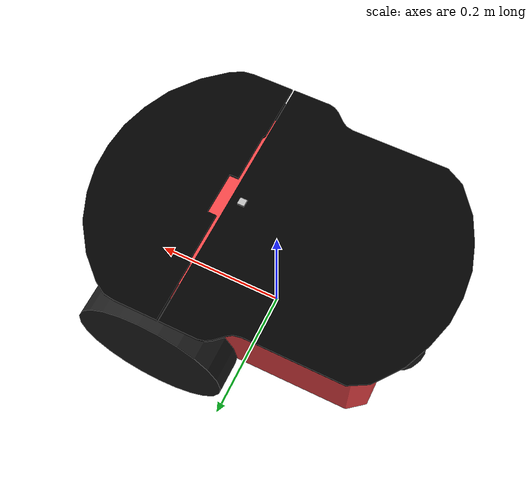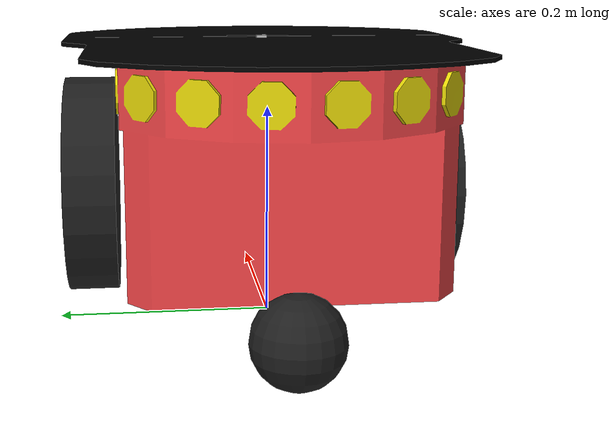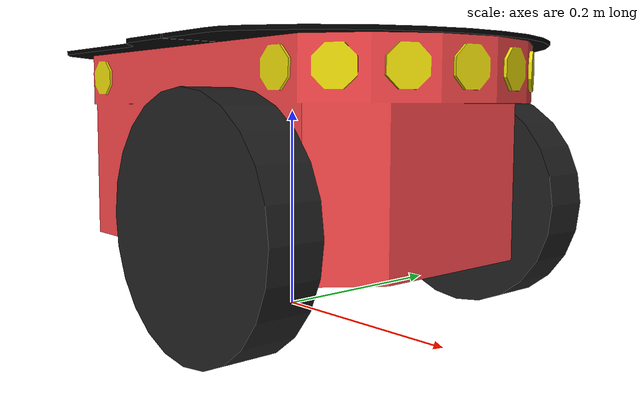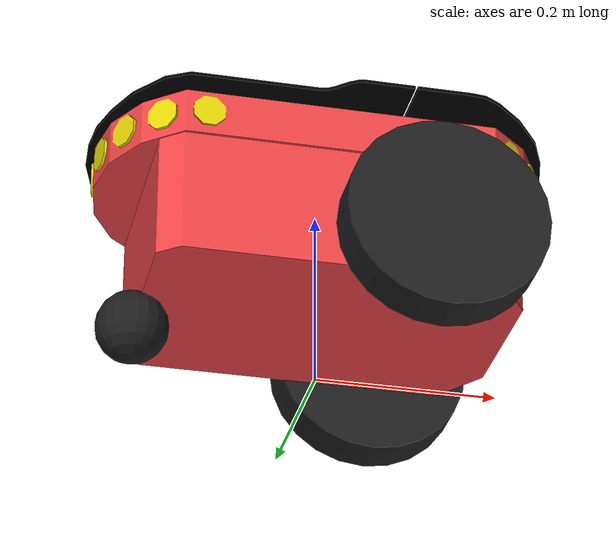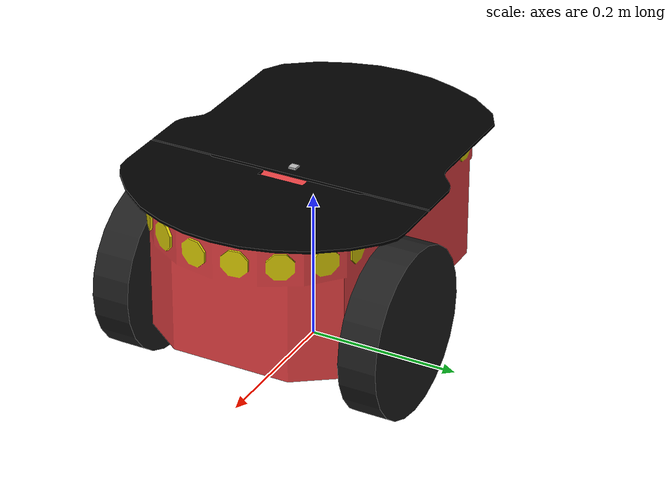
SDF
<?xml version="1.0" ?>
<sdf version="1.5">
  <model name="pioneer2dx">
    <link name="chassis">
      <pose>0 0 0.16 0 0 0</pose>
      <inertial>
        <mass>5.67</mass>
        <inertia>
          <ixx>0.07</ixx>
          <iyy>0.08</iyy>
          <izz>0.10</izz>
          <ixy>0</ixy>
          <ixz>0</ixz>
          <iyz>0</iyz>
        </inertia>
      </inertial>
      <collision name="collision">
        <geometry>
          <box>
            <size>0.445 0.277 0.17</size>
          </box>
        </geometry>
      </collision>
      <collision name="castor_collision">
        <pose>-0.200 0 -0.12 0 0 0</pose>
        <geometry>
          <sphere>
            <radius>0.04</radius>
          </sphere>
        </geometry>
        <surface>
          <friction>
            <ode>
              <mu>0</mu>
              <mu2>0</mu2>
              <slip1>1.0</slip1>
              <slip2>1.0</slip2>
            </ode>
          </friction>
        </surface>
      </collision>
      <visual name="visual">
        <pose>0 0 0.04 0 0 0</pose>
        <geometry>
          <mesh>
            <uri>model://pioneer2dx/meshes/chassis.dae</uri>
          </mesh>
        </geometry>
      </visual>
      <visual name="castor_visual">
        <pose>-0.200 0 -0.12 0 0 0</pose>
        <geometry>
          <sphere>
            <radius>0.04</radius>
          </sphere>
        </geometry>
        <material>
          <script>
            <uri>file://media/materials/scripts/gazebo.material</uri>
            <name>Gazebo/FlatBlack</name>
          </script>
        </material>
      </visual>
    </link>
    <link name="right_wheel">
      <pose>0.1 -.17 0.11 0 1.5707 1.5707</pose>
      <inertial>
        <mass>1.5</mass>
        <inertia>
          <ixx>0.0051</ixx>
          <iyy>0.0051</iyy>
          <izz>0.0090</izz>
          <ixy>0</ixy>
          <ixz>0</ixz>
          <iyz>0</iyz>
        </inertia>
      </inertial>
      <collision name="collision">
        <geometry>
          <cylinder>
            <radius>0.11</radius>
            <length>0.05</length>
          </cylinder>
        </geometry>
        <surface>
          <friction>
            <ode>
              <mu>100000.0</mu>
              <mu2>100000.0</mu2>
              <slip1>0.0</slip1>
              <slip2>0.0</slip2>
            </ode>
          </friction>
        </surface>
      </collision>
      <visual name="visual">
        <geometry>
          <cylinder>
            <radius>0.11</radius>
            <length>0.05</length>
          </cylinder>
        </geometry>
        <material>
          <script>
            <uri>file://media/materials/scripts/gazebo.material</uri>
            <name>Gazebo/FlatBlack</name>
          </script>
        </material>
      </visual>
    </link>
    <link name="left_wheel">
      <pose>0.1 .17 0.11 0 1.5707 1.5707</pose>
      <inertial>
        <mass>1.5</mass>
        <inertia>
          <ixx>0.0051</ixx>
          <iyy>0.0051</iyy>
          <izz>0.0090</izz>
          <ixy>0</ixy>
          <ixz>0</ixz>
          <iyz>0</iyz>
        </inertia>
      </inertial>
      <collision name="collision">
        <geometry>
          <cylinder>
            <radius>0.11</radius>
            <length>0.05</length>
          </cylinder>
        </geometry>
        <surface>
          <friction>
            <ode>
              <mu>100000.0</mu>
              <mu2>100000.0</mu2>
              <slip1>0.0</slip1>
              <slip2>0.0</slip2>
            </ode>
          </friction>
        </surface>
      </collision>
      <visual name="visual">
        <geometry>
          <cylinder>
            <radius>0.11</radius>
            <length>0.05</length>
          </cylinder>
        </geometry>
        <material>
          <script>
            <uri>file://media/materials/scripts/gazebo.material</uri>
            <name>Gazebo/FlatBlack</name>
          </script>
        </material>
      </visual>
    </link>
    <joint type="revolute" name="left_wheel_hinge">
      <pose>0 0 -0.03 0 0 0</pose>
      <child>left_wheel</child>
      <parent>chassis</parent>
      <axis>
        <xyz>0 1 0</xyz>
        <use_parent_model_frame>true</use_parent_model_frame>
      </axis>
    </joint>
    <joint type="revolute" name="right_wheel_hinge">
      <pose>0 0 0.03 0 0 0</pose>
      <child>right_wheel</child>
      <parent>chassis</parent>
      <axis>
        <xyz>0 1 0</xyz>
        <use_parent_model_frame>true</use_parent_model_frame>
      </axis>
    </joint>
    <plugin name="differential_drive_controller" filename="libgazebo_ros_diff_drive.so">
        <alwaysOn>true</alwaysOn>
        <updateRate>100</updateRate>
        <leftJoint>left_wheel_hinge</leftJoint>
        <rightJoint>right_wheel_hinge</rightJoint>
        <wheelSeparation>0.39</wheelSeparation>
        <wheelDiameter>0.15</wheelDiameter>
        <torque>5</torque>
        <commandTopic>cmd_vel</commandTopic>
        <odometryTopic>odom</odometryTopic>
        <odometryFrame>odom</odometryFrame>
        <robotBaseFrame>chassis</robotBaseFrame>
      </plugin>
     <joint type="fixed" name="sonar_joint">
      <pose>0 0 0.03 0 0 0</pose>
      <child>base_sonar_front</child>
      <parent>chassis</parent>
      <axis>
        <xyz>0.12 0 0.25</xyz>
        <use_parent_model_frame>true</use_parent_model_frame>
      </axis>
    </joint>
	<link name="base_sonar_front">
     <collision name="collision">
        <geometry>
          <box>
            <size>0.01 0.01 0.01</size>
          </box>
        </geometry>
      </collision>
     <visual name="visual">
        <geometry>
          <box>
            <size>0.01 0.01 0.01</size>
          </box>
        </geometry>
    </visual>
    <pose>0.05 0 0.26 0 0 0</pose>
      <inertial>
        <mass>1e-5</mass>
        <inertia>
          <ixx>1e-6</ixx>
          <iyy>1e-6</iyy>
          <izz>1e-6</izz>
          <ixy>0</ixy>
          <ixz>0</ixz>
          <iyz>0</iyz>
        </inertia>
      </inertial>
      <sensor type="ray" name="sonar">
	<pose>0 0 0 0 0 0</pose>
	<visualize>false</visualize>
	<update_rate>10</update_rate>
	<ray>
	<scan>
	<horizontal>
		<samples>15</samples>
		<resolution>1.0</resolution>
		<min_angle>-1.3</min_angle>
		<max_angle>1.3</max_angle>
	</horizontal>
	<vertical>
		<samples>10</samples>
		<resolution>1</resolution>
		<min_angle>-0</min_angle>
		<max_angle>0.4</max_angle>
	</vertical>
	</scan>
	<range>
		<min>0.01</min>
		<max>2.2</max>
		<resolution>0.01</resolution>
	</range>
	</ray>
	<plugin filename="libgazebo_ros_range.so" name="gazebo_ros_range">
	<gaussianNoise>0.005</gaussianNoise>
		<alwaysOn>true</alwaysOn>
		<updateRate>10</updateRate>
		<topicName>sonar</topicName>
		<frameName>base_sonar_front</frameName>
		<fov>0.5</fov>
		<radiation>ultrasound</radiation>
	</plugin>
	</sensor>
 </link>
  </model>
</sdf>
